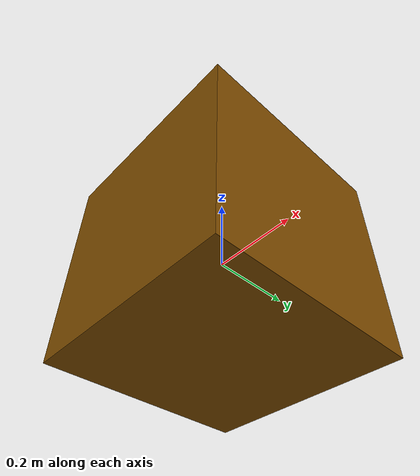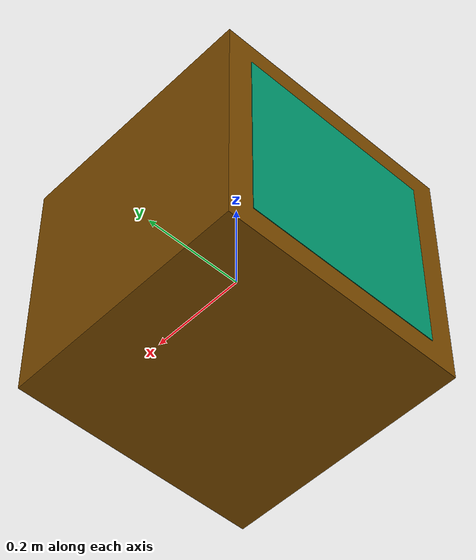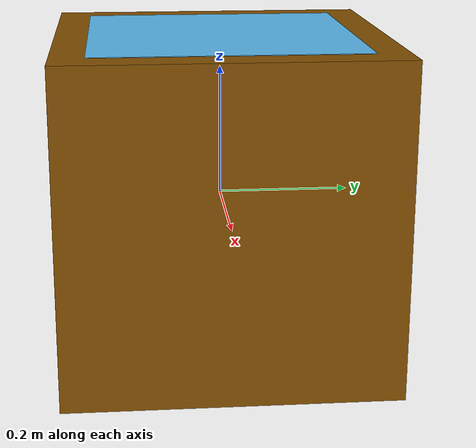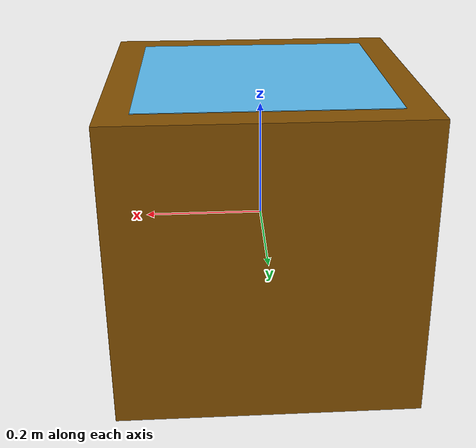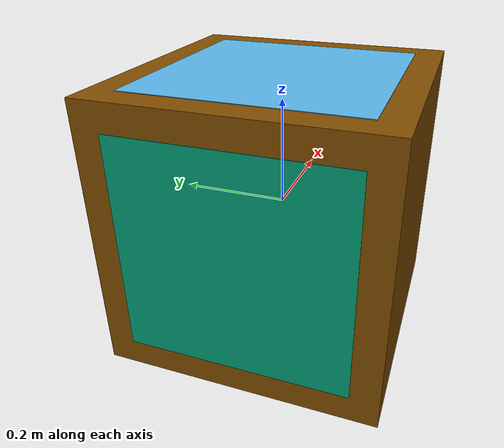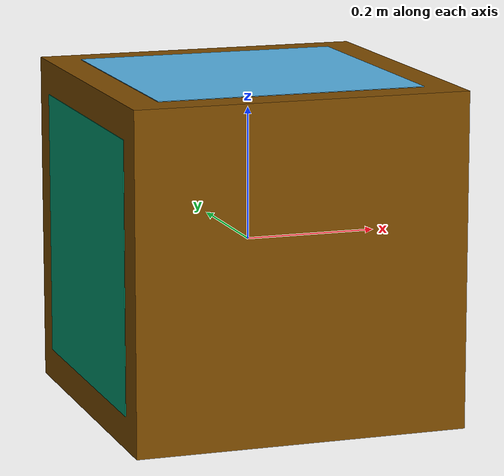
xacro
<robot name="mycar">
    <link name="base_link">
        <visual>
            <geometry>
                <box size="0.5 0.5 0.5" />
            </geometry>
            <origin xyz="0.0 0.0 0.0" rpy="0.0 0.0 0.0" />
            <material name="yellow">
                <color rgba="0.5 0.3 0.0 1" />
            </material>
        </visual>
        <collision>
            <geometry>
                <box size="0.5 0.5 0.5" />
            </geometry>
            <origin xyz="0.0 0.0 0.0" rpy="0.0 0.0 0.0" />
        </collision>
        <inertial>
            <origin xyz="0 0 0" />
            <mass value="30" />
            <inertia ixx="1" ixy="0" ixz="0" iyy="1" iyz="0" izz="1" />
        </inertial>
    </link>
    <gazebo reference="base_link">
        <material>Gazebo/Black</material>
    </gazebo>

    <link name="apriltag0_link">
    <visual>
      <geometry>
        <box size="0.4 0.4 0.001" rpy="0 0 0"/>
      </geometry>
    </visual>
    <collision>
      <origin xyz="0 0 0.0" rpy="0 0 0" />
      <geometry>
        <box size="0.4 0.4 0.001" rpy="0 0 0"/>
      </geometry>
    </collision>
	</link>

  <joint name="apriltag0_link_joint" type="fixed">
    <parent link="base_link" />
    <child link="apriltag0_link" />
    <origin xyz="0 0 0.251" rpy="0 0 0" />
  </joint>
  <gazebo reference="apriltag0_link">
    <material>Apriltag36_11_00000</material>
  </gazebo>

  <link name="apriltag1_link">
    <visual>
      <geometry>
        <box size="0.4 0.4 0.001" rpy="0 0 0"/>
      </geometry>
    </visual>
    <collision>
      <origin xyz="0 0 0.0" rpy="0 0 0" />
      <geometry>
        <box size="0.4 0.4 0.001" rpy="0 0 0"/>
      </geometry>
    </collision>
	</link>

  <joint name="apriltag1_link_joint" type="fixed">
    <parent link="base_link" />
    <child link="apriltag1_link" />
    <origin xyz="-0.251 0 0" rpy="0  -1.57 0" />
  </joint>
  <gazebo reference="apriltag1_link">
    <material>Apriltag36_11_00001</material>
  </gazebo>

</robot>
